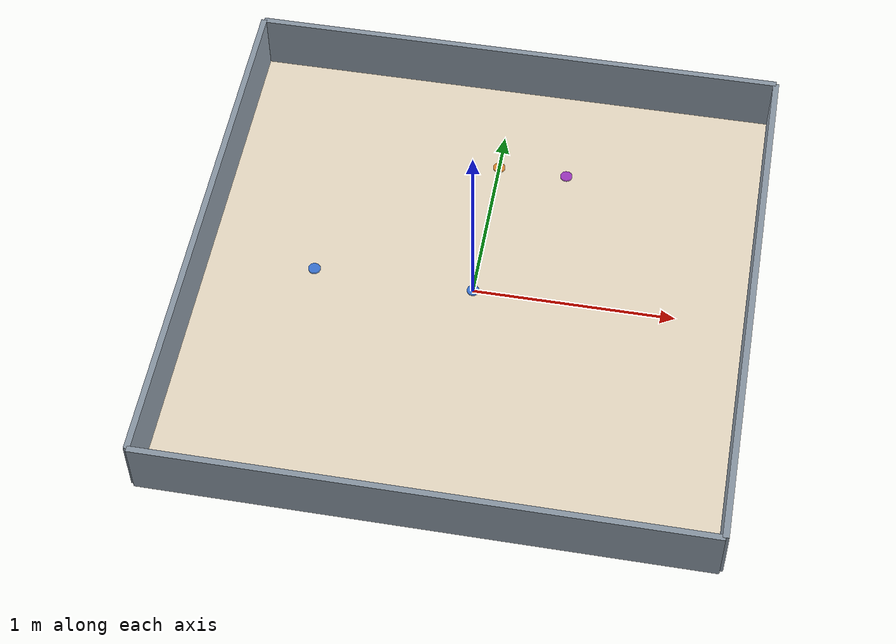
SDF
<?xml version="1.0" ?>
<sdf version="1.7">
  <world name="arena_pid_tuning">

    <gravity>0 0 -9.81</gravity>

    <physics type="ode">
      <max_step_size>0.001</max_step_size>
      <real_time_factor>1.0</real_time_factor>
      <real_time_update_rate>1000</real_time_update_rate>
      <ode>
        <solver>
          <type>quick</type>
          <iters>50</iters>
          <sor>1.4</sor>
        </solver>
      </ode>
    </physics>

    <light name="sun" type="directional">
      <cast_shadows>true</cast_shadows>
      <pose>0 0 10 0 0 0</pose>
      <diffuse>0.9 0.9 0.9 1</diffuse>
      <specular>0.3 0.3 0.3 1</specular>
      <direction>-0.5 0.2 -0.9</direction>
    </light>

    <light name="ambient_fill" type="directional">
      <cast_shadows>false</cast_shadows>
      <pose>0 0 5 0 0 0</pose>
      <diffuse>0.4 0.4 0.4 1</diffuse>
      <specular>0 0 0 1</specular>
      <direction>0 0 -1</direction>
    </light>

    <model name="arena_floor">
      <static>true</static>
      <pose>0 0 0 0 0 0</pose>
      <link name="link">
        <collision name="collision">
          <geometry>
            <box><size>2.7 2.7 0.02</size></box>
          </geometry>
          <pose>0 0 -0.01 0 0 0</pose>
          <surface>
            <friction>
              <ode>
                <mu>0.6</mu>
                <mu2>0.45</mu2>
                <fdir1>1 0 0</fdir1>
              </ode>
            </friction>
            <contact>
              <ode>
                <kp>1e6</kp>
                <kd>100</kd>
                <min_depth>0.001</min_depth>
                <max_vel>1.0</max_vel>
              </ode>
            </contact>
          </surface>
        </collision>
        <visual name="visual">
          <geometry>
            <box><size>2.7 2.7 0.02</size></box>
          </geometry>
          <pose>0 0 -0.01 0 0 0</pose>
          <material>
            <ambient>0.92 0.87 0.78 1</ambient>
            <diffuse>0.92 0.87 0.78 1</diffuse>
            <specular>0.3 0.3 0.3 1</specular>
          </material>
        </visual>
      </link>
    </model>

    <model name="wall_north">
      <static>true</static>
      <pose>0 1.35 0.15 0 0 0</pose>
      <link name="link">
        <collision name="c">
          <geometry><box><size>2.7 0.03 0.30</size></box></geometry>
          <surface><friction><ode><mu>0.5</mu><mu2>0.5</mu2></ode></friction></surface>
        </collision>
        <visual name="v">
          <geometry><box><size>2.7 0.03 0.30</size></box></geometry>
          <material><ambient>0.55 0.60 0.65 1</ambient><diffuse>0.55 0.60 0.65 1</diffuse></material>
        </visual>
      </link>
    </model>

    <model name="wall_south">
      <static>true</static>
      <pose>0 -1.35 0.15 0 0 0</pose>
      <link name="link">
        <collision name="c">
          <geometry><box><size>2.7 0.03 0.30</size></box></geometry>
          <surface><friction><ode><mu>0.5</mu><mu2>0.5</mu2></ode></friction></surface>
        </collision>
        <visual name="v">
          <geometry><box><size>2.7 0.03 0.30</size></box></geometry>
          <material><ambient>0.55 0.60 0.65 1</ambient><diffuse>0.55 0.60 0.65 1</diffuse></material>
        </visual>
      </link>
    </model>

    <model name="wall_east">
      <static>true</static>
      <pose>1.35 0 0.15 0 0 0</pose>
      <link name="link">
        <collision name="c">
          <geometry><box><size>0.03 2.7 0.30</size></box></geometry>
          <surface><friction><ode><mu>0.5</mu><mu2>0.5</mu2></ode></friction></surface>
        </collision>
        <visual name="v">
          <geometry><box><size>0.03 2.7 0.30</size></box></geometry>
          <material><ambient>0.55 0.60 0.65 1</ambient><diffuse>0.55 0.60 0.65 1</diffuse></material>
        </visual>
      </link>
    </model>

    <model name="wall_west">
      <static>true</static>
      <pose>-1.35 0 0.15 0 0 0</pose>
      <link name="link">
        <collision name="c">
          <geometry><box><size>0.03 2.7 0.30</size></box></geometry>
          <surface><friction><ode><mu>0.5</mu><mu2>0.5</mu2></ode></friction></surface>
        </collision>
        <visual name="v">
          <geometry><box><size>0.03 2.7 0.30</size></box></geometry>
          <material><ambient>0.55 0.60 0.65 1</ambient><diffuse>0.55 0.60 0.65 1</diffuse></material>
        </visual>
      </link>
    </model>

    <model name="marker_0_origin">
      <static>true</static>
      <pose>0 0 0.005 0 0 0</pose>
      <link name="link">
        <visual name="v">
          <geometry><cylinder><radius>0.03</radius><length>0.01</length></cylinder></geometry>
          <material><ambient>0.1 0.4 0.9 0.8</ambient><diffuse>0.1 0.4 0.9 0.8</diffuse></material>
        </visual>
      </link>
    </model>

    <model name="marker_1_p1_p3_forward">
      <static>true</static>
      <pose>0 0.80 0.005 0 0 0</pose>
      <link name="link">
        <visual name="v">
          <geometry><cylinder><radius>0.03</radius><length>0.01</length></cylinder></geometry>
          <material><ambient>0.9 0.5 0.1 0.8</ambient><diffuse>0.9 0.5 0.1 0.8</diffuse></material>
        </visual>
      </link>
    </model>

    <model name="marker_2_p3_end">
      <static>true</static>
      <pose>0.35 0.80 0.005 0 0 0</pose>
      <link name="link">
        <visual name="v">
          <geometry><cylinder><radius>0.03</radius><length>0.01</length></cylinder></geometry>
          <material><ambient>0.6 0.1 0.8 0.8</ambient><diffuse>0.6 0.1 0.8 0.8</diffuse></material>
        </visual>
      </link>

    </model>
        <model name="marker_3_p4_left">
      <static>true</static>
      <pose>-0.80 0 0.005 0 0 0</pose>
      <link name="link">
        <visual name="v">
          <geometry><cylinder><radius>0.03</radius><length>0.01</length></cylinder></geometry>
          <material><ambient>0.1 0.4 0.9 0.8</ambient><diffuse>0.1 0.4 0.9 0.8</diffuse></material>
        </visual>
      </link>
    </model>

    <scene>
      <ambient>0.5 0.5 0.5 1</ambient>
      <background>0.55 0.65 0.75 1</background>
      <shadows>true</shadows>
    </scene>

    <gui fullscreen="0">
      <camera name="user_camera">
        <pose>0.15 0.40 3.5 0 1.57 1.57</pose>
        <view_controller>orbit</view_controller>
      </camera>
    </gui>

  </world>
</sdf>
